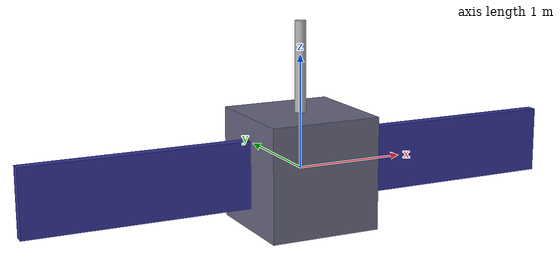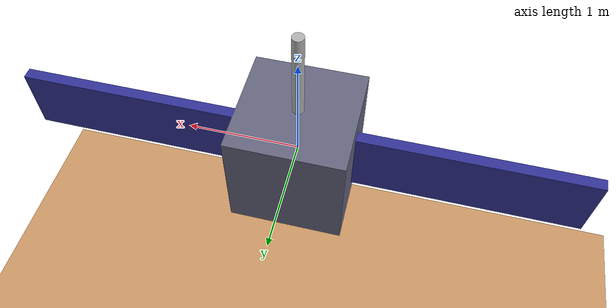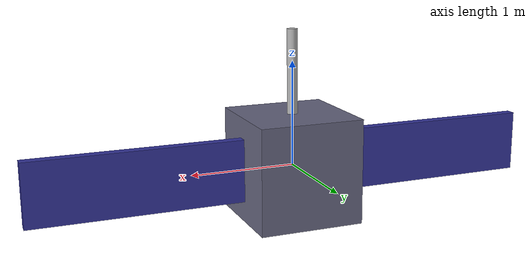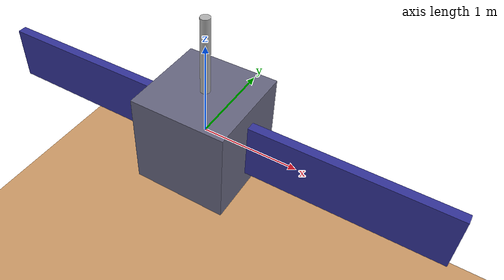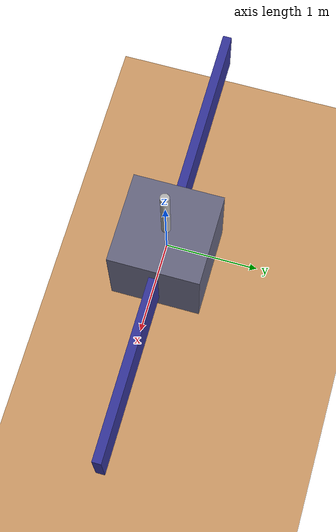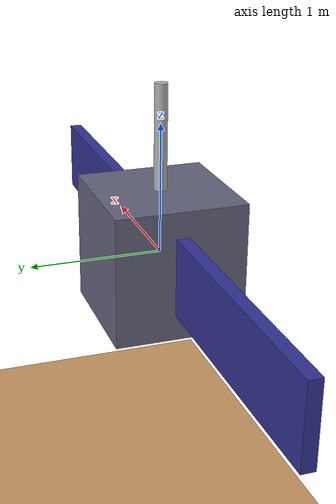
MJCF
<?xml version="1.0" encoding="utf-8"?>
<mujoco model="satellite_rw">
  <compiler angle="degree" coordinate="local" inertiafromgeom="true"/>
  <option integrator="RK4" timestep="0.005" gravity="0 0 0"/>

  <visual>
    <global offwidth="2560" offheight="1440"/>
  </visual>

  <default>
    <joint armature="0" damping="0" limited="false"/>
    <geom conaffinity="0" condim="3" density="500" friction="1 0.5 0.5"
          margin="0" material="geom" rgba="0.8 0.6 0.4 1"/>
    <site type="sphere" size="0.015" rgba="0.5 0.5 0.5 0.3"/>
  </default>

  <asset>
    <texture type="skybox" builtin="gradient" rgb1=".1 .1 .2" rgb2="0 0 0"
             width="32" height="32"/>
    <texture name="grid" type="2d" builtin="checker" rgb1=".1 .2 .3"
             rgb2=".2 .3 .4" width="512" height="512" mark="edge" markrgb=".8 .8 .8"/>
    <material name="grid" texture="grid" texrepeat="20 20" texuniform="true" reflectance=".2"/>
    <material name="geom" rgba="0.8 0.6 0.4 1"/>
    <material name="rw_material" rgba="0.3 0.3 0.3 1"/>
    <material name="thruster_active" rgba="1.0 0.3 0.1 0.9"/>
  </asset>

  <worldbody>
    <light cutoff="100" diffuse="1 1 1" dir="-0 0 -1.3" directional="true"
           exponent="1" pos="0 0 1.3" specular="0.1 0.1 0.1"/>

    <!-- Floor for reference -->
    <geom name="floor" size="10 10 .05" type="plane" material="grid" pos="0 0 -3.0"/>

    <!-- Overhead Camera -->
    <camera name="overhead_cam" pos="0 0 4" mode="fixed" xyaxes="1 0 0 0 1 0"/>

    <!-- Tracking Camera -->
    <camera name="track_cam" pos="2 2 2" mode="trackcom" xyaxes="-0.707 0.707 0 -0.408 -0.408 0.816"/>

    <!-- Inspection Camera (wide view) -->
    <camera name="inspect_cam" pos="15 15 10" mode="fixed" fovy="60"/>

    <!-- ==================== TARGET SATELLITE ==================== -->
    <!-- Static body at origin (represents the target being inspected) -->
    <body name="target" pos="0 0 0">
      <geom name="target_body" type="box" size="0.5 0.5 0.5"
            rgba="0.4 0.4 0.5 0.9" contype="0" conaffinity="0"/>
      <!-- Solar panels -->
      <geom name="solar_l" type="box" size="1.0 0.05 0.3" pos="-1.5 0 0"
            rgba="0.2 0.2 0.6 0.9" contype="0" conaffinity="0"/>
      <geom name="solar_r" type="box" size="1.0 0.05 0.3" pos="1.5 0 0"
            rgba="0.2 0.2 0.6 0.9" contype="0" conaffinity="0"/>
      <!-- Antenna -->
      <geom name="antenna" type="cylinder" size="0.05 0.4" pos="0 0 0.9"
            rgba="0.7 0.7 0.7 0.9" contype="0" conaffinity="0"/>
    </body>

    <body name="satellite" pos="0 0 0">
      <!-- 6-DOF Free Joint -->
      <joint name="root" type="free"/>

      <!-- Satellite Body (Box 30cm - half size 0.15m) -->
      <geom name="satellite_geom" type="box" size="0.15 0.15 0.15" mass="9.1"
            rgba="0.7 0.7 0.8 0.85"/>

      <!-- ==================== REACTION WHEELS ==================== -->
      <!-- Each wheel: 0.3kg, 0.001 kg·m² inertia, max 6000 RPM -->

      <!-- X-axis Reaction Wheel -->
      <body name="rw_x" pos="0.08 0 0">
        <joint name="rw_x_joint" type="hinge" axis="1 0 0"
               damping="0.0001" armature="0.001"/>
        <geom name="rw_x_geom" type="cylinder" size="0.025 0.008" mass="0.3"
              euler="0 90 0" material="rw_material"/>
      </body>

      <!-- Y-axis Reaction Wheel -->
      <body name="rw_y" pos="0 0.08 0">
        <joint name="rw_y_joint" type="hinge" axis="0 1 0"
               damping="0.0001" armature="0.001"/>
        <geom name="rw_y_geom" type="cylinder" size="0.025 0.008" mass="0.3"
              euler="90 0 0" material="rw_material"/>
      </body>

      <!-- Z-axis Reaction Wheel -->
      <body name="rw_z" pos="0 0 0.08">
        <joint name="rw_z_joint" type="hinge" axis="0 0 1"
               damping="0.0001" armature="0.001"/>
        <geom name="rw_z_geom" type="cylinder" size="0.025 0.008" mass="0.3"
              material="rw_material"/>
      </body>

      <!-- ==================== THRUSTERS ==================== -->
      <!-- 6 thrusters: 2 per axis for full 3D translation -->
      <!-- Each thruster: ~0.45N force -->

      <!-- +X face thruster (pushes -X) -->
      <site name="thruster_px" pos="0.15 0 0" rgba="1 0.2 0.2 0.3"/>

      <!-- -X face thruster (pushes +X) -->
      <site name="thruster_mx" pos="-0.15 0 0" rgba="1 0.2 0.2 0.3"/>

      <!-- +Y face thruster (pushes -Y) -->
      <site name="thruster_py" pos="0 0.15 0" rgba="0.2 1 0.2 0.3"/>

      <!-- -Y face thruster (pushes +Y) -->
      <site name="thruster_my" pos="0 -0.15 0" rgba="0.2 1 0.2 0.3"/>

      <!-- +Z face thruster (pushes -Z) -->
      <site name="thruster_pz" pos="0 0 0.15" rgba="0.2 0.2 1 0.3"/>

      <!-- -Z face thruster (pushes +Z) -->
      <site name="thruster_mz" pos="0 0 -0.15" rgba="0.2 0.2 1 0.3"/>

    </body>
  </worldbody>

  <!-- ==================== ACTUATORS ==================== -->
  <actuator>
    <!-- Reaction Wheel Torque Actuators -->
    <!-- Max torque: 0.1 N·m (increased for faster attitude control) -->
    <motor name="rw_x_torque" joint="rw_x_joint" gear="1"
           ctrlrange="-0.1 0.1" ctrllimited="true"/>
    <motor name="rw_y_torque" joint="rw_y_joint" gear="1"
           ctrlrange="-0.1 0.1" ctrllimited="true"/>
    <motor name="rw_z_torque" joint="rw_z_joint" gear="1"
           ctrlrange="-0.1 0.1" ctrllimited="true"/>
  </actuator>

  <!-- ==================== SENSORS ==================== -->
  <sensor>
    <!-- Reaction wheel speed sensors -->
    <jointvel name="rw_x_speed" joint="rw_x_joint"/>
    <jointvel name="rw_y_speed" joint="rw_y_joint"/>
    <jointvel name="rw_z_speed" joint="rw_z_joint"/>

    <!-- Body state sensors -->
    <framepos name="sat_pos" objtype="body" objname="satellite"/>
    <framequat name="sat_quat" objtype="body" objname="satellite"/>
    <framelinvel name="sat_vel" objtype="body" objname="satellite"/>
    <frameangvel name="sat_angvel" objtype="body" objname="satellite"/>
  </sensor>

</mujoco>
